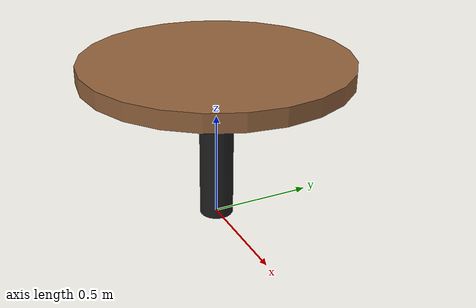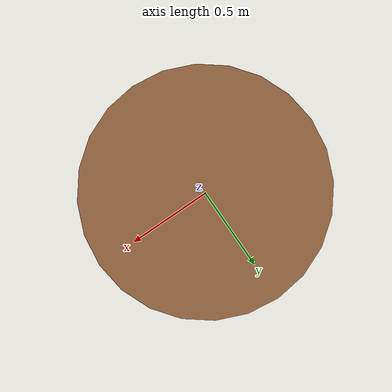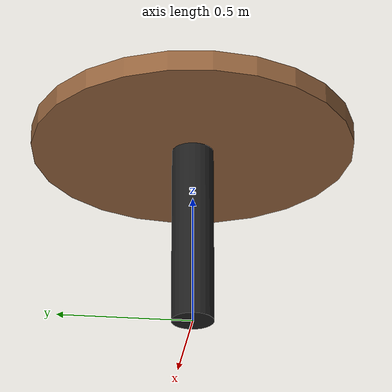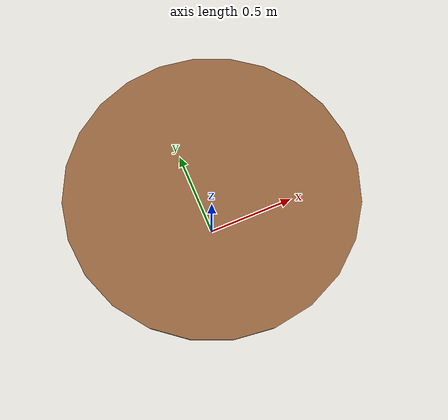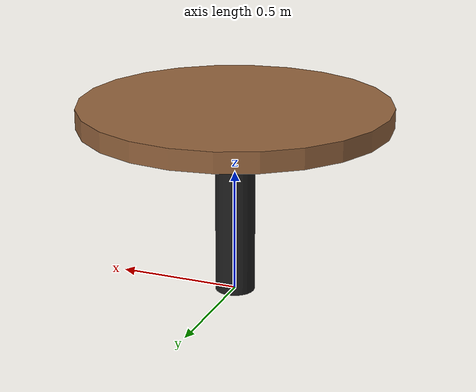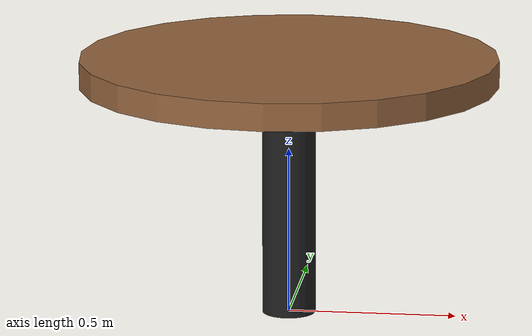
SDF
<?xml version="1.0"?>
<sdf version="1.6">
  <model name="restaurant_round_table">
    <static>true</static>
    <link name="top">
      <pose>0 0 0.74 0 0 0</pose>
      <collision name="collision">
        <geometry>
          <cylinder>
            <radius>0.62</radius>
            <length>0.08</length>
          </cylinder>
        </geometry>
      </collision>
      <visual name="visual">
        <geometry>
          <cylinder>
            <radius>0.62</radius>
            <length>0.08</length>
          </cylinder>
        </geometry>
        <material>
          <ambient>0.58 0.39 0.24 1</ambient>
          <diffuse>0.58 0.39 0.24 1</diffuse>
        </material>
      </visual>
    </link>
    <link name="leg">
      <pose>0 0 0.36 0 0 0</pose>
      <collision name="collision">
        <geometry>
          <cylinder>
            <radius>0.08</radius>
            <length>0.72</length>
          </cylinder>
        </geometry>
      </collision>
      <visual name="visual">
        <geometry>
          <cylinder>
            <radius>0.08</radius>
            <length>0.72</length>
          </cylinder>
        </geometry>
        <material>
          <ambient>0.12 0.12 0.12 1</ambient>
          <diffuse>0.12 0.12 0.12 1</diffuse>
        </material>
      </visual>
    </link>
  </model>
</sdf>
